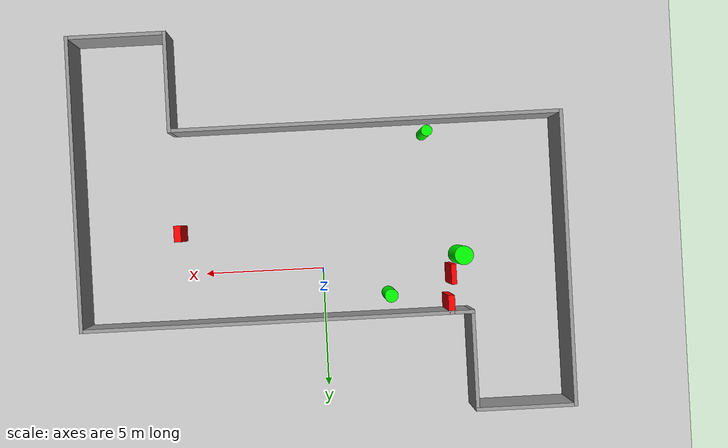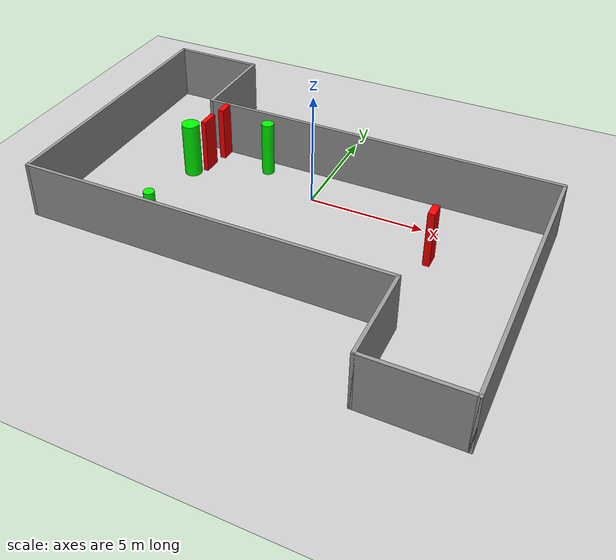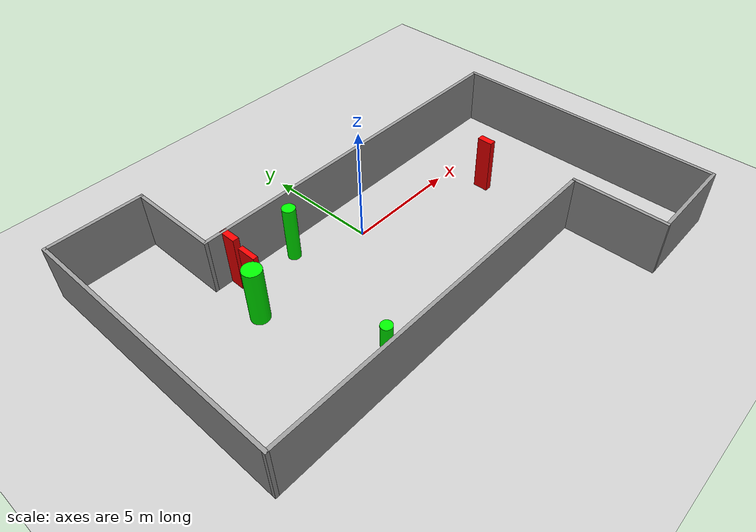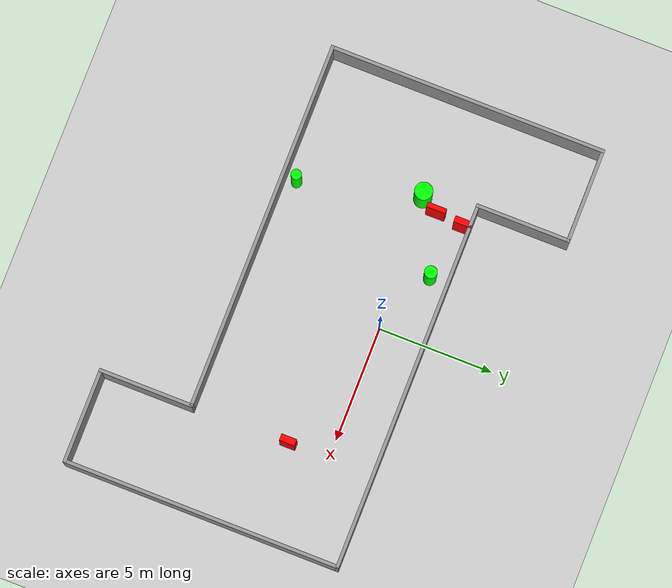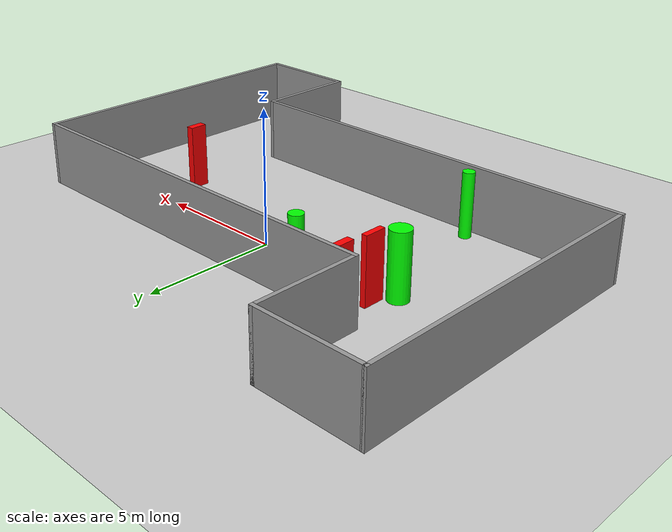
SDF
<sdf version="1.7">
 <world name="default">
  <light name="sun" type="directional">
   <pose>0 0 10 0 -0 0</pose>
   <diffuse>0.8 0.8 0.8 1</diffuse>
   <specular>0.2 0.2 0.2 1</specular>
   <attenuation>
    <range>1000</range>
    <constant>0.9</constant>
    <linear>0.01</linear>
    <quadratic>0.001</quadratic>
   </attenuation>
   <direction>-0.5 0.1 -0.9</direction>
   <spot><inner_angle>0</inner_angle><outer_angle>0</outer_angle><falloff>0</falloff></spot>
  </light>
  <model name="ground_plane">
   <static>1</static>
   <link name="link">
    <collision name="collision">
     <geometry><plane><normal>0 0 1</normal><size>100 100</size></plane></geometry>
     <surface>
      <contact><collide_bitmask>65535</collide_bitmask></contact>
      <friction><ode><mu>100</mu><mu2>50</mu2></ode></friction>
     </surface>
    </collision>
    <visual name="visual">
     <cast_shadows>0</cast_shadows>
     <geometry><plane><normal>0 0 1</normal><size>100 100</size></plane></geometry>
     <material>
      <script><uri>file://media/materials/scripts/gazebo.material</uri><name>Gazebo/Grey</name></script>
     </material>
    </visual>
   </link>
  </model>
  <gravity>0 0 -9.8</gravity>
  <magnetic_field>6e-06 2.3e-05 -4.2e-05</magnetic_field>
  <atmosphere type="adiabatic"/>
  <physics type="ode">
   <max_step_size>0.001</max_step_size>
   <real_time_factor>1</real_time_factor>
   <real_time_update_rate>1000</real_time_update_rate>
  </physics>
  <scene><ambient>0.4 0.4 0.4 1</ambient><background>0.7 0.7 0.7 1</background><shadows>1</shadows></scene>
  <spherical_coordinates>
   <surface_model>EARTH_WGS84</surface_model>
   <latitude_deg>0</latitude_deg>
   <longitude_deg>0</longitude_deg>
   <elevation>0</elevation>
   <heading_deg>0</heading_deg>
  </spherical_coordinates>
  <model name="my_base_walls">
   <link name="Wall_13">
    <collision name="Wall_13_Collision">
     <geometry><box><size>12.15 0.15 2.5</size></box></geometry>
     <pose>0 0 1.25 0 -0 0</pose>
    </collision>
    <visual name="Wall_13_Visual">
     <pose>0 0 1.25 0 -0 0</pose>
     <geometry><box><size>12.15 0.15 2.5</size></box></geometry>
     <material>
      <script><uri>file://media/materials/scripts/gazebo.material</uri><name>Gazebo/Grey</name></script>
      <ambient>1 1 1 1</ambient>
     </material>
     <meta><layer>0</layer></meta>
    </visual>
    <pose>10 -2 0 0 -0 1.5708</pose>
   </link>
   <link name="Wall_15">
    <collision name="Wall_15_Collision">
     <geometry><box><size>16.15 0.15 2.5</size></box></geometry>
     <pose>0 0 1.25 0 -0 0</pose>
    </collision>
    <visual name="Wall_15_Visual">
     <pose>0 0 1.25 0 -0 0</pose>
     <geometry><box><size>16.15 0.15 2.5</size></box></geometry>
     <material>
      <script><uri>file://media/materials/scripts/gazebo.material</uri><name>Gazebo/Grey</name></script>
      <ambient>1 1 1 1</ambient>
     </material>
     <meta><layer>0</layer></meta>
    </visual>
    <pose>2 4 0 0 -0 3.14159</pose>
   </link>
   <link name="Wall_17">
    <collision name="Wall_17_Collision">
     <geometry><box><size>4.15 0.15 2.5</size></box></geometry>
     <pose>0 0 1.25 0 -0 0</pose>
    </collision>
    <visual name="Wall_17_Visual">
     <pose>0 0 1.25 0 -0 0</pose>
     <geometry><box><size>4.15 0.15 2.5</size></box></geometry>
     <material>
      <script><uri>file://media/materials/scripts/gazebo.material</uri><name>Gazebo/Grey</name></script>
      <ambient>1 1 1 1</ambient>
     </material>
     <meta><layer>0</layer></meta>
    </visual>
    <pose>6 -6 0 0 -0 -1.5708</pose>
   </link>
   <link name="Wall_19">
    <collision name="Wall_19_Collision">
     <geometry><box><size>12.15 0.15 2.5</size></box></geometry>
     <pose>0 0 1.25 0 -0 0</pose>
    </collision>
    <visual name="Wall_19_Visual">
     <pose>0 0 1.25 0 -0 0</pose>
     <geometry><box><size>12.15 0.15 2.5</size></box></geometry>
     <material>
      <script><uri>file://media/materials/scripts/gazebo.material</uri><name>Gazebo/Grey</name></script>
      <ambient>1 1 1 1</ambient>
     </material>
     <meta><layer>0</layer></meta>
    </visual>
    <pose>-10 2 0 0 -0 1.5708</pose>
   </link>
   <link name="Wall_21">
    <collision name="Wall_21_Collision">
     <geometry><box><size>4.15 0.15 2.5</size></box></geometry>
     <pose>0 0 1.25 0 -0 0</pose>
    </collision>
    <visual name="Wall_21_Visual">
     <pose>0 0 1.25 0 -0 0</pose>
     <geometry><box><size>4.15 0.15 2.5</size></box></geometry>
     <material>
      <script><uri>file://media/materials/scripts/gazebo.material</uri><name>Gazebo/Grey</name></script>
      <ambient>1 1 1 1</ambient>
     </material>
     <meta><layer>0</layer></meta>
    </visual>
    <pose>-8 8 0 0 -0 0</pose>
   </link>
   <link name="Wall_23">
    <collision name="Wall_23_Collision">
     <geometry><box><size>4.15 0.15 2.5</size></box></geometry>
     <pose>0 0 1.25 0 -0 0</pose>
    </collision>
    <visual name="Wall_23_Visual">
     <pose>0 0 1.25 0 -0 0</pose>
     <geometry><box><size>4.15 0.15 2.5</size></box></geometry>
     <material>
      <script><uri>file://media/materials/scripts/gazebo.material</uri><name>Gazebo/Grey</name></script>
      <ambient>1 1 1 1</ambient>
     </material>
     <meta><layer>0</layer></meta>
    </visual>
    <pose>-6 6 0 0 -0 -1.5708</pose>
   </link>
   <link name="Wall_25">
    <collision name="Wall_25_Collision">
     <geometry><box><size>4.15 0.15 2.5</size></box></geometry>
     <pose>0 0 1.25 0 -0 0</pose>
    </collision>
    <visual name="Wall_25_Visual">
     <pose>0 0 1.25 0 -0 0</pose>
     <geometry><box><size>4.15 0.15 2.5</size></box></geometry>
     <material>
      <script><uri>file://media/materials/scripts/gazebo.material</uri><name>Gazebo/Grey</name></script>
      <ambient>1 1 1 1</ambient>
     </material>
     <meta><layer>0</layer></meta>
    </visual>
    <pose>8 -8 0 0 -0 0</pose>
   </link>
   <link name="Wall_9">
    <collision name="Wall_9_Collision">
     <geometry><box><size>16.15 0.15 2.5</size></box></geometry>
     <pose>0 0 1.25 0 -0 0</pose>
    </collision>
    <visual name="Wall_9_Visual">
     <pose>0 0 1.25 0 -0 0</pose>
     <geometry><box><size>16.15 0.15 2.5</size></box></geometry>
     <material>
      <script><uri>file://media/materials/scripts/gazebo.material</uri><name>Gazebo/Grey</name></script>
      <ambient>1 1 1 1</ambient>
     </material>
     <meta><layer>0</layer></meta>
    </visual>
    <pose>-2 -4 0 0 -0 3.14159</pose>
   </link>
   <static>1</static>
   <pose>-0 -2 0 0 -0 0</pose>
  </model>
  <model name="cylinder1">
   <static>1</static>
   <link name="link">
    <inertial>
     <mass>1</mass>
     <inertia><ixx>0.5</ixx><ixy>0</ixy><ixz>0</ixz><iyy>0.5</iyy><iyz>0</iyz><izz>1</izz></inertia>
    </inertial>
    <collision name="collision">
     <geometry><cylinder><radius>0.22798839148937966</radius><length>2.5</length></cylinder></geometry>
    </collision>
    <visual name="visual">
     <geometry><cylinder><radius>0.22798839148937966</radius><length>2.5</length></cylinder></geometry>
     <material>
      <ambient>0 1 0 1</ambient>
      <diffuse>0 1 0 1</diffuse>
      <specular>0.1 0.1 0.1 1</specular>
      <emissive>0 0 0 0</emissive>
     </material>
    </visual>
   </link>
   <pose>-4.4928391898579 -5.468348718671995 1.25 0 0 0</pose>
  </model>
  <model name="cylinder2">
   <static>1</static>
   <link name="link">
    <inertial>
     <mass>1</mass>
     <inertia><ixx>0.5</ixx><ixy>0</ixy><ixz>0</ixz><iyy>0.5</iyy><iyz>0</iyz><izz>1</izz></inertia>
    </inertial>
    <collision name="collision">
     <geometry><cylinder><radius>0.38878193528711746</radius><length>2.5</length></cylinder></geometry>
    </collision>
    <visual name="visual">
     <geometry><cylinder><radius>0.38878193528711746</radius><length>2.5</length></cylinder></geometry>
     <material>
      <ambient>0 1 0 1</ambient>
      <diffuse>0 1 0 1</diffuse>
      <specular>0.1 0.1 0.1 1</specular>
      <emissive>0 0 0 0</emissive>
     </material>
    </visual>
   </link>
   <pose>-5.7560632375904515 -0.3055747897498593 1.25 0 0 0</pose>
  </model>
  <model name="cylinder3">
   <static>1</static>
   <link name="link">
    <inertial>
     <mass>1</mass>
     <inertia><ixx>0.5</ixx><ixy>0</ixy><ixz>0</ixz><iyy>0.5</iyy><iyz>0</iyz><izz>1</izz></inertia>
    </inertial>
    <collision name="collision">
     <geometry><cylinder><radius>0.274795447770223</radius><length>2.5</length></cylinder></geometry>
    </collision>
    <visual name="visual">
     <geometry><cylinder><radius>0.274795447770223</radius><length>2.5</length></cylinder></geometry>
     <material>
      <ambient>0 1 0 1</ambient>
      <diffuse>0 1 0 1</diffuse>
      <specular>0.1 0.1 0.1 1</specular>
      <emissive>0 0 0 0</emissive>
     </material>
    </visual>
   </link>
   <pose>-2.71905744134669 1.1846802978050386 1.25 0 0 0</pose>
  </model>
  <model name="box1">
   <static>1</static>
   <link name="link">
    <inertial>
     <mass>1</mass>
     <inertia><ixx>0.083</ixx><ixy>0</ixy><ixz>0</ixz><iyy>0.083</iyy><iyz>0</iyz><izz>0.083</izz></inertia>
    </inertial>
    <collision name="collision">
     <geometry><box><size>0.2687650917948218 0.7584962316311599 2.5</size></box></geometry>
    </collision>
    <visual name="visual">
     <geometry><box><size>0.2687650917948218 0.7584962316311599 2.5</size></box></geometry>
     <material>
      <ambient>1 0 0 1</ambient>
      <diffuse>1 0 0 1</diffuse>
      <specular>0.1 0.1 0.1 1</specular>
      <emissive>0 0 0 0</emissive>
     </material>
    </visual>
    <sensor name="my_contact" type="contact">
     <contact><collision>box_collision</collision><topic>__default_topic__</topic></contact>
    </sensor>
   </link>
   <pose>-5.153124307875573 1.6741024674962306 1.25 0 0 0</pose>
  </model>
  <model name="box2">
   <static>1</static>
   <link name="link">
    <inertial>
     <mass>1</mass>
     <inertia><ixx>0.083</ixx><ixy>0</ixy><ixz>0</ixz><iyy>0.083</iyy><iyz>0</iyz><izz>0.083</izz></inertia>
    </inertial>
    <collision name="collision">
     <geometry><box><size>0.29128270128424644 0.6697681821758116 2.5</size></box></geometry>
    </collision>
    <visual name="visual">
     <geometry><box><size>0.29128270128424644 0.6697681821758116 2.5</size></box></geometry>
     <material>
      <ambient>1 0 0 1</ambient>
      <diffuse>1 0 0 1</diffuse>
      <specular>0.1 0.1 0.1 1</specular>
      <emissive>0 0 0 0</emissive>
     </material>
    </visual>
    <sensor name="my_contact" type="contact">
     <contact><collision>box_collision</collision><topic>__default_topic__</topic></contact>
    </sensor>
   </link>
   <pose>5.873368970882053 -1.7802302501649168 1.25 0 0 0</pose>
  </model>
  <model name="box3">
   <static>1</static>
   <link name="link">
    <inertial>
     <mass>1</mass>
     <inertia><ixx>0.083</ixx><ixy>0</ixy><ixz>0</ixz><iyy>0.083</iyy><iyz>0</iyz><izz>0.083</izz></inertia>
    </inertial>
    <collision name="collision">
     <geometry><box><size>0.21209793767669138 0.8361997148896066 2.5</size></box></geometry>
    </collision>
    <visual name="visual">
     <geometry><box><size>0.21209793767669138 0.8361997148896066 2.5</size></box></geometry>
     <material>
      <ambient>1 0 0 1</ambient>
      <diffuse>1 0 0 1</diffuse>
      <specular>0.1 0.1 0.1 1</specular>
      <emissive>0 0 0 0</emissive>
     </material>
    </visual>
    <sensor name="my_contact" type="contact">
     <contact><collision>box_collision</collision><topic>__default_topic__</topic></contact>
    </sensor>
   </link>
   <pose>-5.3020021252141945 0.441335481902974 1.25 0 0 0</pose>
  </model>
 </world>
</sdf>
